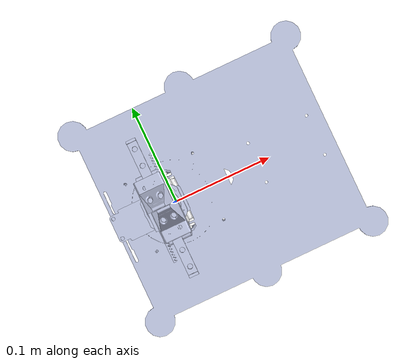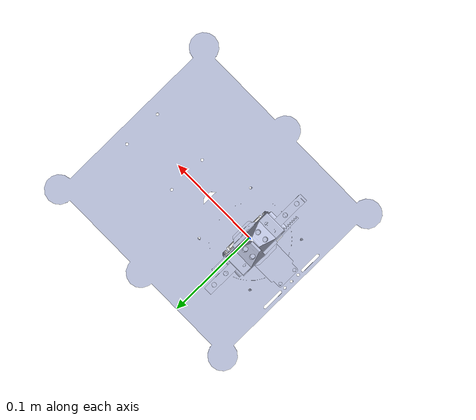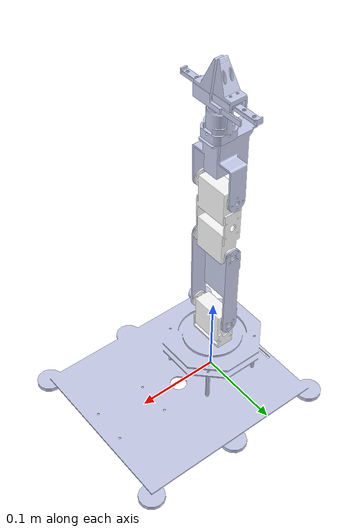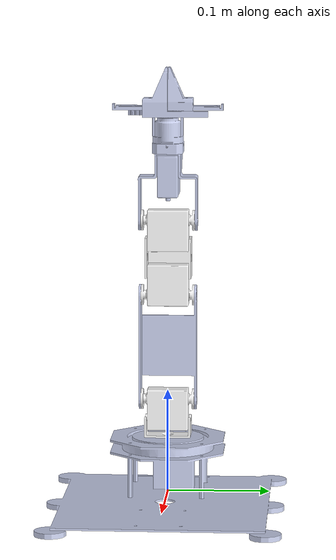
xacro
<?xml version="1.0"?>
<robot xmlns:xacro="http://www.ros.org/wiki/xacro" name="zlarm_description">
    <xacro:arg name="initial_positions_file" default="initial_positions.yaml" />
    <!-- Import zlarm_description urdf file -->
    <xacro:include filename="$(find zlarm_description)/urdf/zlarm_description.urdf.xacro" />

    <!-- Import control_xacro -->
    <xacro:include filename="zlarm_description.ros2_control.xacro" />

    <xacro:zlarm_description_ros2_control name="FakeSystem" initial_positions_file="$(arg initial_positions_file)"/>

</robot>

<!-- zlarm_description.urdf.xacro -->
<robot xmlns:xacro="http://www.ros.org/wiki/xacro">
  <link
    name="base_link">
    <inertial>
      <origin
        xyz="0.0221709604094146 0.00102061948183807 0.0209906897114635"
        rpy="0 0 0" />
      <mass
        value="0.25175937001406" />
      <inertia
        ixx="0.000596688851983624"
        ixy="-5.88114431217455E-08"
        ixz="-2.45101826496541E-07"
        iyy="0.000662550232630304"
        iyz="-1.25369047340847E-07"
        izz="0.00124145605836551" />
    </inertial>
    <visual>
      <origin
        xyz="0 0 0"
        rpy="0 0 0" />
      <geometry>
        <mesh
          filename="package://zlarm_description/meshes/base_link.STL" />
      </geometry>
      <material
        name="">
        <color
          rgba="0.792156862745098 0.819607843137255 0.933333333333333 1" />
      </material>
    </visual>
    <collision>
      <origin
        xyz="0 0 0"
        rpy="0 0 0" />
      <geometry>
        <mesh
          filename="package://zlarm_description/meshes/base_link.STL" />
      </geometry>
    </collision>
  </link>
  <link
    name="link1">
    <inertial>
      <origin
        xyz="3.73431542359526E-06 1.57764626503853E-05 0.0276157877783038"
        rpy="0 0 0" />
      <mass
        value="0.0456406639502157" />
      <inertia
        ixx="1.21000561885726E-05"
        ixy="-2.10785214842448E-12"
        ixz="1.43366338603729E-09"
        iyy="7.10552788256176E-06"
        iyz="5.32187487279842E-09"
        izz="7.9921342261645E-06" />
    </inertial>
    <visual>
      <origin
        xyz="0 0 0"
        rpy="0 0 0" />
      <geometry>
        <mesh
          filename="package://zlarm_description/meshes/link1.STL" />
      </geometry>
      <material
        name="">
        <color
          rgba="1 1 1 1" />
      </material>
    </visual>
    <collision>
      <origin
        xyz="0 0 0"
        rpy="0 0 0" />
      <geometry>
        <mesh
          filename="package://zlarm_description/meshes/link1.STL" />
      </geometry>
    </collision>
  </link>
  <joint
    name="joint1"
    type="revolute">
    <origin
      xyz="-2.0792E-05 0 0.0525"
      rpy="0 0 0" />
    <parent
      link="base_link" />
    <child
      link="link1" />
    <axis
      xyz="0 0 1" />
    <limit
      lower="-1.5708"
      upper="1.5708"
      effort="10.0"
      velocity="1.0" />
  </joint>
  <link
    name="link2">
    <inertial>
      <origin
        xyz="-0.0515 -0.00367569989994914 -1.11022302462516E-16"
        rpy="0 0 0" />
      <mass
        value="0.0150013816640669" />
      <inertia
        ixx="8.38686831853106E-06"
        ixy="8.24505348156317E-21"
        ixz="9.96420251562661E-20"
        iyy="1.91552678825878E-05"
        iyz="-4.01740606605407E-20"
        izz="1.19562192175291E-05" />
    </inertial>
    <visual>
      <origin
        xyz="0 0 0"
        rpy="0 0 0" />
      <geometry>
        <mesh
          filename="package://zlarm_description/meshes/link2.STL" />
      </geometry>
      <material
        name="">
        <color
          rgba="0.792156862745098 0.819607843137255 0.933333333333333 1" />
      </material>
    </visual>
    <collision>
      <origin
        xyz="0 0 0"
        rpy="0 0 0" />
      <geometry>
        <mesh
          filename="package://zlarm_description/meshes/link2.STL" />
      </geometry>
    </collision>
  </link>
  <joint
    name="joint2"
    type="revolute">
    <origin
      xyz="0 0 0.03865"
      rpy="1.5708 1.5704 0" />
    <parent
      link="link1" />
    <child
      link="link2" />
    <axis
      xyz="0 0 -1" />
    <limit
      lower="-1.5708"
      upper="1.5708"
      effort="10.0"
      velocity="1.0" />
  </joint>
  <link
    name="link3">
    <inertial>
      <origin
        xyz="-0.0366499770037697 -0.000397974566436636 -0.000285684851574208"
        rpy="0 0 0" />
      <mass
        value="0.0914301217869069" />
      <inertia
        ixx="1.61895735535747E-05"
        ixy="7.79689527819437E-22"
        ixz="7.41994732296582E-21"
        iyy="2.48565411044368E-05"
        iyz="-9.02388346632778E-11"
        izz="1.48080036394588E-05" />
    </inertial>
    <visual>
      <origin
        xyz="0 0 0"
        rpy="0 0 0" />
      <geometry>
        <mesh
          filename="package://zlarm_description/meshes/link3.STL" />
      </geometry>
      <material
        name="">
        <color
          rgba="1 1 1 1" />
      </material>
    </visual>
    <collision>
      <origin
        xyz="0 0 0"
        rpy="0 0 0" />
      <geometry>
        <mesh
          filename="package://zlarm_description/meshes/link3.STL" />
      </geometry>
    </collision>
  </link>
  <joint
    name="joint3"
    type="revolute">
    <origin
      xyz="-0.103 0 0"
      rpy="0 0 0" />
    <parent
      link="link2" />
    <child
      link="link3" />
    <axis
      xyz="0 0 -1" />
    <limit
      lower="-1.5708"
      upper="1.5708"
      effort="10.0"
      velocity="1.0" />
  </joint>
  <link
    name="link4">
    <inertial>
      <origin
        xyz="-0.0426707479899427 -0.00709612816109308 -0.000134058484138277"
        rpy="0 0 0" />
      <mass
        value="0.0516933055416123" />
      <inertia
        ixx="1.21084331107011E-05"
        ixy="-8.30263119962514E-07"
        ixz="9.6017480874702E-10"
        iyy="1.5761311041807E-05"
        iyz="-7.89587080993816E-10"
        izz="1.7190142915555E-05" />
    </inertial>
    <visual>
      <origin
        xyz="0 0 0"
        rpy="0 0 0" />
      <geometry>
        <mesh
          filename="package://zlarm_description/meshes/link4.STL" />
      </geometry>
      <material
        name="">
        <color
          rgba="0.792156862745098 0.819607843137255 0.933333333333333 1" />
      </material>
    </visual>
    <collision>
      <origin
        xyz="0 0 0"
        rpy="0 0 0" />
      <geometry>
        <mesh
          filename="package://zlarm_description/meshes/link4.STL" />
      </geometry>
    </collision>
  </link>
  <joint
    name="joint4"
    type="revolute">
    <origin
      xyz="-0.0732999540075392 0 0"
      rpy="0 0 0" />
    <parent
      link="link3" />
    <child
      link="link4" />
    <axis
      xyz="0 0 -1" />
    <limit
      lower="-1.5708"
      upper="1.5708"
      effort="10.0"
      velocity="1.0" />
  </joint>
  <link
    name="link5">
    <inertial>
      <origin
        xyz="1.20314494200802E-08 1.49244971936469E-08 -0.000575227732471761"
        rpy="0 0 0" />
      <mass
        value="0.000646644487863901" />
      <inertia
        ixx="1.55888144531973E-08"
        ixy="7.76125316985978E-18"
        ixz="-2.99138207885228E-13"
        iyy="1.5588814456568E-08"
        iyz="-3.71068181914057E-13"
        izz="2.98907164206809E-08" />
    </inertial>
    <visual>
      <origin
        xyz="0 0 0"
        rpy="0 0 0" />
      <geometry>
        <mesh
          filename="package://zlarm_description/meshes/link5.STL" />
      </geometry>
      <material
        name="">
        <color
          rgba="1 1 1 1" />
      </material>
    </visual>
    <collision>
      <origin
        xyz="0 0 0"
        rpy="0 0 0" />
      <geometry>
        <mesh
          filename="package://zlarm_description/meshes/link5.STL" />
      </geometry>
    </collision>
  </link>
  <joint
    name="joint5"
    type="revolute">
    <origin
      xyz="-0.0682243933179387 0.0023018729714997 -0.000134875345940033"
      rpy="-1.57082231078953 0.00184650979107542 1.5567252968918" />
    <parent
      link="link4" />
    <child
      link="link5" />
    <axis
      xyz="0 0 1" />
    <limit
      lower="-1.5708"
      upper="1.5708"
      effort="10.0"
      velocity="1.0" />
  </joint>
  <link
    name="gripper_base_link">
    <inertial>
      <origin
        xyz="-0.0616934486513835 0.000985771191585209 1.54427206379149E-05"
        rpy="0 0 0" />
      <mass
        value="0.0218218515622906" />
      <inertia
        ixx="4.89294487346846E-06"
        ixy="2.04476389850048E-08"
        ixz="5.31851726888672E-09"
        iyy="5.05197711598414E-06"
        iyz="3.26752375952789E-10"
        izz="2.18440311673384E-06" />
    </inertial>
    <visual>
      <origin
        xyz="0 0 0"
        rpy="0 0 0" />
      <geometry>
        <mesh
          filename="package://zlarm_description/meshes/gripper_base_link.STL" />
      </geometry>
      <material
        name="">
        <color
          rgba="0.792156862745098 0.819607843137255 0.933333333333333 1" />
      </material>
    </visual>
    <collision>
      <origin
        xyz="0 0 0"
        rpy="0 0 0" />
      <geometry>
        <mesh
          filename="package://zlarm_description/meshes/gripper_base_link.STL" />
      </geometry>
    </collision>
  </link>
  <joint
    name="gripper_base_joint"
    type="fixed">
    <origin
      xyz="0 0 0.080242"
      rpy="-1.5726 -1.5567 3.1416" />
    <parent
      link="link5" />
    <child
      link="gripper_base_link" />
    <axis
      xyz="0 0 0" />
  </joint>
  <link
    name="figger_link1">
    <inertial>
      <origin
        xyz="-0.0296361699785966 0.00261215342632353 -0.00725948435649681"
        rpy="0 0 0" />
      <mass
        value="0.00821304889372135" />
      <inertia
        ixx="7.07712297673231E-07"
        ixy="3.26464854837125E-08"
        ixz="-9.87706425447697E-08"
        iyy="8.22613743330352E-07"
        iyz="-2.18760529626971E-08"
        izz="6.2075307057772E-07" />
    </inertial>
    <visual>
      <origin
        xyz="0 0 0"
        rpy="0 0 0" />
      <geometry>
        <mesh
          filename="package://zlarm_description/meshes/figger_link1.STL" />
      </geometry>
      <material
        name="">
        <color
          rgba="0.792156862745098 0.819607843137255 0.933333333333333 1" />
      </material>
    </visual>
    <collision>
      <origin
        xyz="0 0 0"
        rpy="0 0 0" />
      <geometry>
        <mesh
          filename="package://zlarm_description/meshes/figger_link1.STL" />
      </geometry>
    </collision>
  </link>
  <joint
    name="figger_joint1"
    type="prismatic">
    <origin
      xyz="0 0 0.080242"
      rpy="-1.5726 -1.5567 3.1416" />
    <parent
      link="link5" />
    <child
      link="figger_link1" />
    <axis
      xyz="0 0 -1" />
    <limit
      lower="0"
      upper="0.025"
      effort="10.0"
      velocity="1.0" />
  </joint>
  <link
    name="figger_link2">
    <inertial>
      <origin
        xyz="-0.0297038620665552 -0.00218789089870593 0.00700953553927919"
        rpy="0 0 0" />
      <mass
        value="0.008213049128757" />
      <inertia
        ixx="7.05969187102707E-07"
        ixy="-2.93680676575521E-08"
        ixz="9.81158437182552E-08"
        iyy="8.2435683330745E-07"
        iyz="-2.4724672630761E-08"
        izz="6.20753063153987E-07" />
    </inertial>
    <visual>
      <origin
        xyz="0 0 0"
        rpy="0 0 0" />
      <geometry>
        <mesh
          filename="package://zlarm_description/meshes/figger_link2.STL" />
      </geometry>
      <material
        name="">
        <color
          rgba="0.792156862745098 0.819607843137255 0.933333333333333 1" />
      </material>
    </visual>
    <collision>
      <origin
        xyz="0 0 0"
        rpy="0 0 0" />
      <geometry>
        <mesh
          filename="package://zlarm_description/meshes/figger_link2.STL" />
      </geometry>
    </collision>
  </link>
  <joint
    name="figger_joint2"
    type="prismatic">
    <origin
      xyz="0 0 0.080242"
      rpy="-1.5726 -1.5567 3.1416" />
    <parent
      link="link5" />
    <child
      link="figger_link2" />
    <axis
      xyz="0 0 -1" />
    <limit
      lower="-0.025"
      upper="0"
      effort="10.0"
      velocity="1.0" />
    <mimic
      joint="figger_joint1"
      multiplier="-1"
      offset="0" />
  </joint>
</robot>
